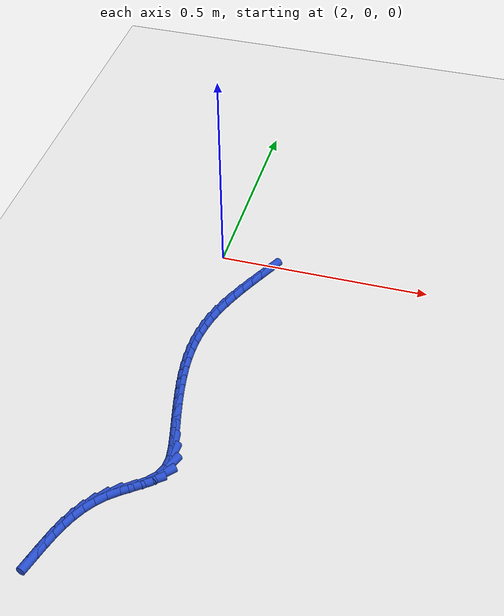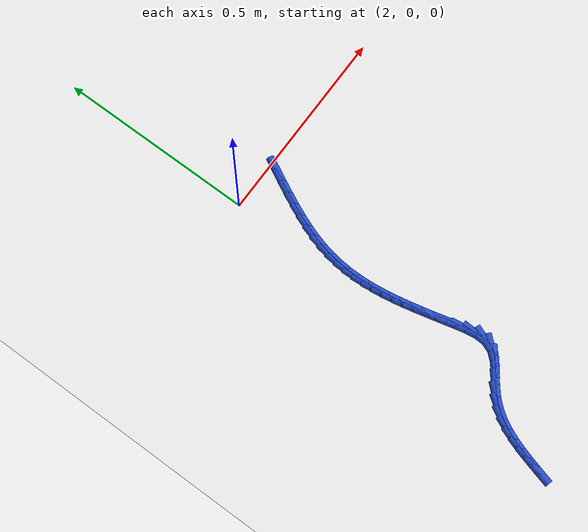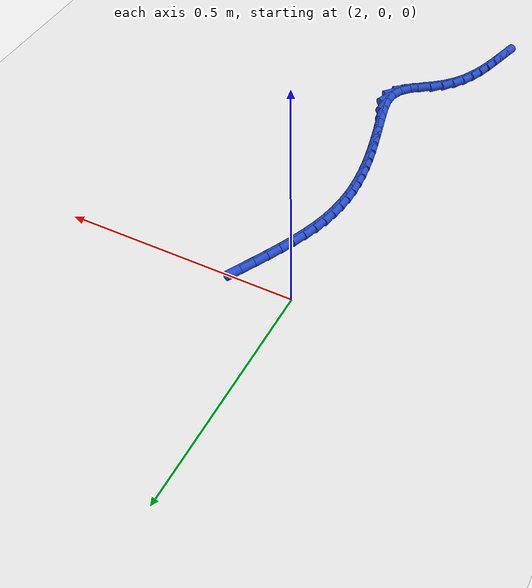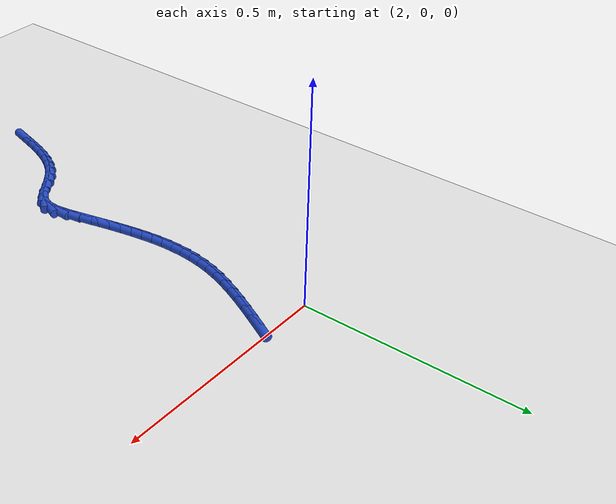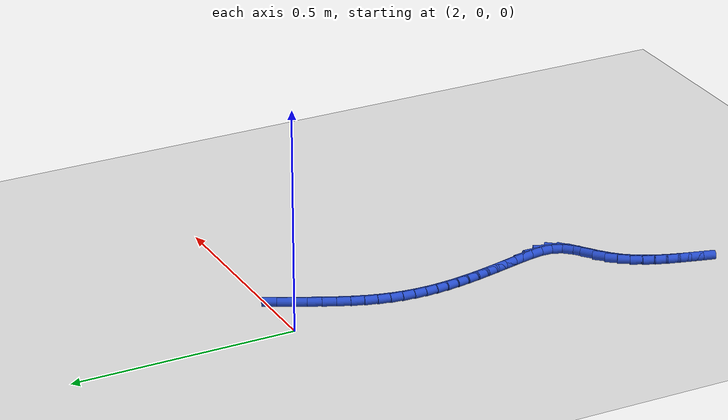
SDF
<sdf version="1.6">
 <world name="default">
  <model name="ground_plane">
   <static>1</static>
   <link name="link">
    <collision name="collision">
     <geometry><plane><normal>0 0 1</normal><size>100 100</size></plane></geometry>
     <surface><friction><ode><mu>100</mu><mu2>50</mu2></ode></friction></surface>
    </collision>
    <visual name="visual">
     <cast_shadows>0</cast_shadows>
     <geometry><plane><normal>0 0 1</normal><size>100 100</size></plane></geometry>
     <material>
      <script><uri>file://media/materials/scripts/gazebo.material</uri><name>Gazebo/WhiteGlow</name></script>
     </material>
    </visual>
   </link>
  </model>
  <model name="line">
   <link name="link_146">
    <pose>2.118410151729123 -0.023879436890500275 0.01 0 1.57 1.0941646913261813</pose>
    <collision name="collision">
     <geometry><cylinder><radius>0.01</radius><length>0.08</length></cylinder></geometry>
    </collision>
    <visual name="visual">
     <material>
      <script><name>Gazebo/Blue</name><uri>file://media/materials/scripts/gazebo.material</uri></script>
     </material>
     <geometry><cylinder><radius>0.01</radius><length>0.08</length></cylinder></geometry>
    </visual>
   </link>
   <link name="link_147">
    <pose>2.103685335031017 -0.052397277714189186 0.01 0 1.57 1.1056122145247522</pose>
    <collision name="collision">
     <geometry><cylinder><radius>0.01</radius><length>0.08</length></cylinder></geometry>
    </collision>
    <visual name="visual">
     <material>
      <script><name>Gazebo/Blue</name><uri>file://media/materials/scripts/gazebo.material</uri></script>
     </material>
     <geometry><cylinder><radius>0.01</radius><length>0.08</length></cylinder></geometry>
    </visual>
   </link>
   <link name="link_148">
    <pose>2.0893607125873346 -0.08093681051509202 0.01 0 1.57 1.1248209829398583</pose>
    <collision name="collision">
     <geometry><cylinder><radius>0.01</radius><length>0.08</length></cylinder></geometry>
    </collision>
    <visual name="visual">
     <material>
      <script><name>Gazebo/Blue</name><uri>file://media/materials/scripts/gazebo.material</uri></script>
     </material>
     <geometry><cylinder><radius>0.01</radius><length>0.08</length></cylinder></geometry>
    </visual>
   </link>
   <link name="link_149">
    <pose>2.0757390664623165 -0.10942796447000477 0.01 0 1.57 1.1524013972036726</pose>
    <collision name="collision">
     <geometry><cylinder><radius>0.01</radius><length>0.08</length></cylinder></geometry>
    </collision>
    <visual name="visual">
     <material>
      <script><name>Gazebo/Blue</name><uri>file://media/materials/scripts/gazebo.material</uri></script>
     </material>
     <geometry><cylinder><radius>0.01</radius><length>0.08</length></cylinder></geometry>
    </visual>
   </link>
   <link name="link_150">
    <pose>2.063123178720205 -0.1378006687557235 0.01 0 1.57 1.1892603951712866</pose>
    <collision name="collision">
     <geometry><cylinder><radius>0.01</radius><length>0.08</length></cylinder></geometry>
    </collision>
    <visual name="visual">
     <material>
      <script><name>Gazebo/Blue</name><uri>file://media/materials/scripts/gazebo.material</uri></script>
     </material>
     <geometry><cylinder><radius>0.01</radius><length>0.08</length></cylinder></geometry>
    </visual>
   </link>
   <link name="link_151">
    <pose>2.0518158314252415 -0.16598485254904416 0.01 0 1.57 1.2366098346935033</pose>
    <collision name="collision">
     <geometry><cylinder><radius>0.01</radius><length>0.08</length></cylinder></geometry>
    </collision>
    <visual name="visual">
     <material>
      <script><name>Gazebo/Blue</name><uri>file://media/materials/scripts/gazebo.material</uri></script>
     </material>
     <geometry><cylinder><radius>0.01</radius><length>0.08</length></cylinder></geometry>
    </visual>
   </link>
   <link name="link_152">
    <pose>2.0421198066416686 -0.1939104450267619 0.01 0 1.57 1.2959226659787593</pose>
    <collision name="collision">
     <geometry><cylinder><radius>0.01</radius><length>0.08</length></cylinder></geometry>
    </collision>
    <visual name="visual">
     <material>
      <script><name>Gazebo/Blue</name><uri>file://media/materials/scripts/gazebo.material</uri></script>
     </material>
     <geometry><cylinder><radius>0.01</radius><length>0.08</length></cylinder></geometry>
    </visual>
   </link>
   <link name="link_153">
    <pose>2.0343370651679673 -0.221507622826013 0.01 0 1.57 1.3643499106593182</pose>
    <collision name="collision">
     <geometry><cylinder><radius>0.01</radius><length>0.08</length></cylinder></geometry>
    </collision>
    <visual name="visual">
     <material>
      <script><name>Gazebo/Blue</name><uri>file://media/materials/scripts/gazebo.material</uri></script>
     </material>
     <geometry><cylinder><radius>0.01</radius><length>0.08</length></cylinder></geometry>
    </visual>
   </link>
   <link name="link_154">
    <pose>2.02863211112252 -0.24874798045150867 0.01 0 1.57 1.4323892161241516</pose>
    <collision name="collision">
     <geometry><cylinder><radius>0.01</radius><length>0.08</length></cylinder></geometry>
    </collision>
    <visual name="visual">
     <material>
      <script><name>Gazebo/Blue</name><uri>file://media/materials/scripts/gazebo.material</uri></script>
     </material>
     <geometry><cylinder><radius>0.01</radius><length>0.08</length></cylinder></geometry>
    </visual>
   </link>
   <link name="link_155">
    <pose>2.0248790638423735 -0.27569060992653804 0.01 0 1.57 1.4974154542794886</pose>
    <collision name="collision">
     <geometry><cylinder><radius>0.01</radius><length>0.08</length></cylinder></geometry>
    </collision>
    <visual name="visual">
     <material>
      <script><name>Gazebo/Blue</name><uri>file://media/materials/scripts/gazebo.material</uri></script>
     </material>
     <geometry><cylinder><radius>0.01</radius><length>0.08</length></cylinder></geometry>
    </visual>
   </link>
   <link name="link_156">
    <pose>2.022915159686151 -0.3024057166980159 0.01 0 1.57 1.5580879459682888</pose>
    <collision name="collision">
     <geometry><cylinder><radius>0.01</radius><length>0.08</length></cylinder></geometry>
    </collision>
    <visual name="visual">
     <material>
      <script><name>Gazebo/Blue</name><uri>file://media/materials/scripts/gazebo.material</uri></script>
     </material>
     <geometry><cylinder><radius>0.01</radius><length>0.08</length></cylinder></geometry>
    </visual>
   </link>
   <link name="link_157">
    <pose>2.0225776350124787 -0.3289635062128574 0.01 0 1.57 -1.5282808836800597</pose>
    <collision name="collision">
     <geometry><cylinder><radius>0.01</radius><length>0.08</length></cylinder></geometry>
    </collision>
    <visual name="visual">
     <material>
      <script><name>Gazebo/Blue</name><uri>file://media/materials/scripts/gazebo.material</uri></script>
     </material>
     <geometry><cylinder><radius>0.01</radius><length>0.08</length></cylinder></geometry>
    </visual>
   </link>
   <link name="link_158">
    <pose>2.0237037261799773 -0.3554341839179774 0.01 0 1.57 -1.4793096147617524</pose>
    <collision name="collision">
     <geometry><cylinder><radius>0.01</radius><length>0.08</length></cylinder></geometry>
    </collision>
    <visual name="visual">
     <material>
      <script><name>Gazebo/Blue</name><uri>file://media/materials/scripts/gazebo.material</uri></script>
     </material>
     <geometry><cylinder><radius>0.01</radius><length>0.08</length></cylinder></geometry>
    </visual>
   </link>
   <link name="link_159">
    <pose>2.026130669547274 -0.38188795526029073 0.01 0 1.57 -1.4371049460635432</pose>
    <collision name="collision">
     <geometry><cylinder><radius>0.01</radius><length>0.08</length></cylinder></geometry>
    </collision>
    <visual name="visual">
     <material>
      <script><name>Gazebo/Blue</name><uri>file://media/materials/scripts/gazebo.material</uri></script>
     </material>
     <geometry><cylinder><radius>0.01</radius><length>0.08</length></cylinder></geometry>
    </visual>
   </link>
   <link name="link_160">
    <pose>2.0296957014729915 -0.40839502568671265 0.01 0 1.57 -1.401925953247359</pose>
    <collision name="collision">
     <geometry><cylinder><radius>0.01</radius><length>0.08</length></cylinder></geometry>
    </collision>
    <visual name="visual">
     <material>
      <script><name>Gazebo/Blue</name><uri>file://media/materials/scripts/gazebo.material</uri></script>
     </material>
     <geometry><cylinder><radius>0.01</radius><length>0.08</length></cylinder></geometry>
    </visual>
   </link>
   <link name="link_161">
    <pose>2.034236058315754 -0.43502560064415785 0.01 0 1.57 -1.373828762075773</pose>
    <collision name="collision">
     <geometry><cylinder><radius>0.01</radius><length>0.08</length></cylinder></geometry>
    </collision>
    <visual name="visual">
     <material>
      <script><name>Gazebo/Blue</name><uri>file://media/materials/scripts/gazebo.material</uri></script>
     </material>
     <geometry><cylinder><radius>0.01</radius><length>0.08</length></cylinder></geometry>
    </visual>
   </link>
   <link name="link_162">
    <pose>2.0395889764341852 -0.46184988557954126 0.01 0 1.57 -1.3527214363653415</pose>
    <collision name="collision">
     <geometry><cylinder><radius>0.01</radius><length>0.08</length></cylinder></geometry>
    </collision>
    <visual name="visual">
     <material>
      <script><name>Gazebo/Blue</name><uri>file://media/materials/scripts/gazebo.material</uri></script>
     </material>
     <geometry><cylinder><radius>0.01</radius><length>0.08</length></cylinder></geometry>
    </visual>
   </link>
   <link name="link_163">
    <pose>2.0455916921869104 -0.4889380859397781 0.01 0 1.57 -1.3384124048650303</pose>
    <collision name="collision">
     <geometry><cylinder><radius>0.01</radius><length>0.08</length></cylinder></geometry>
    </collision>
    <visual name="visual">
     <material>
      <script><name>Gazebo/Blue</name><uri>file://media/materials/scripts/gazebo.material</uri></script>
     </material>
     <geometry><cylinder><radius>0.01</radius><length>0.08</length></cylinder></geometry>
    </visual>
   </link>
   <link name="link_164">
    <pose>2.0520814419325526 -0.5163604071717832 0.01 0 1.57 -1.3306480038006383</pose>
    <collision name="collision">
     <geometry><cylinder><radius>0.01</radius><length>0.08</length></cylinder></geometry>
    </collision>
    <visual name="visual">
     <material>
      <script><name>Gazebo/Blue</name><uri>file://media/materials/scripts/gazebo.material</uri></script>
     </material>
     <geometry><cylinder><radius>0.01</radius><length>0.08</length></cylinder></geometry>
    </visual>
   </link>
   <link name="link_165">
    <pose>2.0588954620297364 -0.5441870547224713 0.01 0 1.57 -1.3291382645137937</pose>
    <collision name="collision">
     <geometry><cylinder><radius>0.01</radius><length>0.08</length></cylinder></geometry>
    </collision>
    <visual name="visual">
     <material>
      <script><name>Gazebo/Blue</name><uri>file://media/materials/scripts/gazebo.material</uri></script>
     </material>
     <geometry><cylinder><radius>0.01</radius><length>0.08</length></cylinder></geometry>
    </visual>
   </link>
   <link name="link_166">
    <pose>2.0658709888370863 -0.5724882340387578 0.01 0 1.57 -1.3401808118794964</pose>
    <collision name="collision">
     <geometry><cylinder><radius>0.01</radius><length>0.08</length></cylinder></geometry>
    </collision>
    <visual name="visual">
     <material>
      <script><name>Gazebo/Blue</name><uri>file://media/materials/scripts/gazebo.material</uri></script>
     </material>
     <geometry><cylinder><radius>0.01</radius><length>0.08</length></cylinder></geometry>
    </visual>
   </link>
   <link name="link_167">
    <pose>2.072614854838626 -0.6012108713263056 0.01 0 1.57 -1.4173954453709108</pose>
    <collision name="collision">
     <geometry><cylinder><radius>0.01</radius><length>0.08</length></cylinder></geometry>
    </collision>
    <visual name="visual">
     <material>
      <script><name>Gazebo/Blue</name><uri>file://media/materials/scripts/gazebo.material</uri></script>
     </material>
     <geometry><cylinder><radius>0.01</radius><length>0.08</length></cylinder></geometry>
    </visual>
   </link>
   <link name="link_168">
    <pose>2.0769665730007687 -0.6293562758407187 0.01 0 1.57 1.5318216459488811</pose>
    <collision name="collision">
     <geometry><cylinder><radius>0.01</radius><length>0.08</length></cylinder></geometry>
    </collision>
    <visual name="visual">
     <material>
      <script><name>Gazebo/Blue</name><uri>file://media/materials/scripts/gazebo.material</uri></script>
     </material>
     <geometry><cylinder><radius>0.01</radius><length>0.08</length></cylinder></geometry>
    </visual>
   </link>
   <link name="link_169">
    <pose>2.075947579853158 -0.6554880391881629 0.01 0 1.57 1.186800271904925</pose>
    <collision name="collision">
     <geometry><cylinder><radius>0.01</radius><length>0.08</length></cylinder></geometry>
    </collision>
    <visual name="visual">
     <material>
      <script><name>Gazebo/Blue</name><uri>file://media/materials/scripts/gazebo.material</uri></script>
     </material>
     <geometry><cylinder><radius>0.01</radius><length>0.08</length></cylinder></geometry>
    </visual>
   </link>
   <link name="link_170">
    <pose>2.066750622877773 -0.6782497586077828 0.01 0 1.57 0.8533888967074791</pose>
    <collision name="collision">
     <geometry><cylinder><radius>0.01</radius><length>0.08</length></cylinder></geometry>
    </collision>
    <visual name="visual">
     <material>
      <script><name>Gazebo/Blue</name><uri>file://media/materials/scripts/gazebo.material</uri></script>
     </material>
     <geometry><cylinder><radius>0.01</radius><length>0.08</length></cylinder></geometry>
    </visual>
   </link>
   <link name="link_171">
    <pose>2.049724330783009 -0.6977643259284608 0.01 0 1.57 0.6816601545517144</pose>
    <collision name="collision">
     <geometry><cylinder><radius>0.01</radius><length>0.08</length></cylinder></geometry>
    </collision>
    <visual name="visual">
     <material>
      <script><name>Gazebo/Blue</name><uri>file://media/materials/scripts/gazebo.material</uri></script>
     </material>
     <geometry><cylinder><radius>0.01</radius><length>0.08</length></cylinder></geometry>
    </visual>
   </link>
   <link name="link_172">
    <pose>2.0279474258545576 -0.715434342945528 0.01 0 1.57 0.6366496320816484</pose>
    <collision name="collision">
     <geometry><cylinder><radius>0.01</radius><length>0.08</length></cylinder></geometry>
    </collision>
    <visual name="visual">
     <material>
      <script><name>Gazebo/Blue</name><uri>file://media/materials/scripts/gazebo.material</uri></script>
     </material>
     <geometry><cylinder><radius>0.01</radius><length>0.08</length></cylinder></geometry>
    </visual>
   </link>
   <link name="link_173">
    <pose>2.0045886716395414 -0.7327046175898871 0.01 0 1.57 0.6987143750162214</pose>
    <collision name="collision">
     <geometry><cylinder><radius>0.01</radius><length>0.08</length></cylinder></geometry>
    </collision>
    <visual name="visual">
     <material>
      <script><name>Gazebo/Blue</name><uri>file://media/materials/scripts/gazebo.material</uri></script>
     </material>
     <geometry><cylinder><radius>0.01</radius><length>0.08</length></cylinder></geometry>
    </visual>
   </link>
   <link name="link_174">
    <pose>1.9827976478618026 -0.7510111051143639 0.01 0 1.57 0.8315836995194266</pose>
    <collision name="collision">
     <geometry><cylinder><radius>0.01</radius><length>0.08</length></cylinder></geometry>
    </collision>
    <visual name="visual">
     <material>
      <script><name>Gazebo/Blue</name><uri>file://media/materials/scripts/gazebo.material</uri></script>
     </material>
     <geometry><cylinder><radius>0.01</radius><length>0.08</length></cylinder></geometry>
    </visual>
   </link>
   <link name="link_175">
    <pose>1.9644083234577612 -0.7711826514064775 0.01 0 1.57 0.9607144624134868</pose>
    <collision name="collision">
     <geometry><cylinder><radius>0.01</radius><length>0.08</length></cylinder></geometry>
    </collision>
    <visual name="visual">
     <material>
      <script><name>Gazebo/Blue</name><uri>file://media/materials/scripts/gazebo.material</uri></script>
     </material>
     <geometry><cylinder><radius>0.01</radius><length>0.08</length></cylinder></geometry>
    </visual>
   </link>
   <link name="link_176">
    <pose>1.9491147453545805 -0.7930606015630378 0.01 0 1.57 1.072376911505602</pose>
    <collision name="collision">
     <geometry><cylinder><radius>0.01</radius><length>0.08</length></cylinder></geometry>
    </collision>
    <visual name="visual">
     <material>
      <script><name>Gazebo/Blue</name><uri>file://media/materials/scripts/gazebo.material</uri></script>
     </material>
     <geometry><cylinder><radius>0.01</radius><length>0.08</length></cylinder></geometry>
    </visual>
   </link>
   <link name="link_177">
    <pose>1.9364145836021731 -0.8163956794709593 0.01 0 1.57 1.1627873974829537</pose>
    <collision name="collision">
     <geometry><cylinder><radius>0.01</radius><length>0.08</length></cylinder></geometry>
    </collision>
    <visual name="visual">
     <material>
      <script><name>Gazebo/Blue</name><uri>file://media/materials/scripts/gazebo.material</uri></script>
     </material>
     <geometry><cylinder><radius>0.01</radius><length>0.08</length></cylinder></geometry>
    </visual>
   </link>
   <link name="link_178">
    <pose>1.925805508250453 -0.8409386090171563 0.01 0 1.57 1.2308138885693387</pose>
    <collision name="collision">
     <geometry><cylinder><radius>0.01</radius><length>0.08</length></cylinder></geometry>
    </collision>
    <visual name="visual">
     <material>
      <script><name>Gazebo/Blue</name><uri>file://media/materials/scripts/gazebo.material</uri></script>
     </material>
     <geometry><cylinder><radius>0.01</radius><length>0.08</length></cylinder></geometry>
    </visual>
   </link>
   <link name="link_179">
    <pose>1.9167851893493333 -0.8664401140885432 0.01 0 1.57 1.2768684406993849</pose>
    <collision name="collision">
     <geometry><cylinder><radius>0.01</radius><length>0.08</length></cylinder></geometry>
    </collision>
    <visual name="visual">
     <material>
      <script><name>Gazebo/Blue</name><uri>file://media/materials/scripts/gazebo.material</uri></script>
     </material>
     <geometry><cylinder><radius>0.01</radius><length>0.08</length></cylinder></geometry>
    </visual>
   </link>
   <link name="link_180">
    <pose>1.9088512969487277 -0.8926509185720344 0.01 0 1.57 1.3018962319847875</pose>
    <collision name="collision">
     <geometry><cylinder><radius>0.01</radius><length>0.08</length></cylinder></geometry>
    </collision>
    <visual name="visual">
     <material>
      <script><name>Gazebo/Blue</name><uri>file://media/materials/scripts/gazebo.material</uri></script>
     </material>
     <geometry><cylinder><radius>0.01</radius><length>0.08</length></cylinder></geometry>
    </visual>
   </link>
   <link name="link_181">
    <pose>1.9015015010985488 -0.9193217463545442 0.01 0 1.57 1.3067376601397167</pose>
    <collision name="collision">
     <geometry><cylinder><radius>0.01</radius><length>0.08</length></cylinder></geometry>
    </collision>
    <visual name="visual">
     <material>
      <script><name>Gazebo/Blue</name><uri>file://media/materials/scripts/gazebo.material</uri></script>
     </material>
     <geometry><cylinder><radius>0.01</radius><length>0.08</length></cylinder></geometry>
    </visual>
   </link>
  </model>
 </world>
</sdf>
